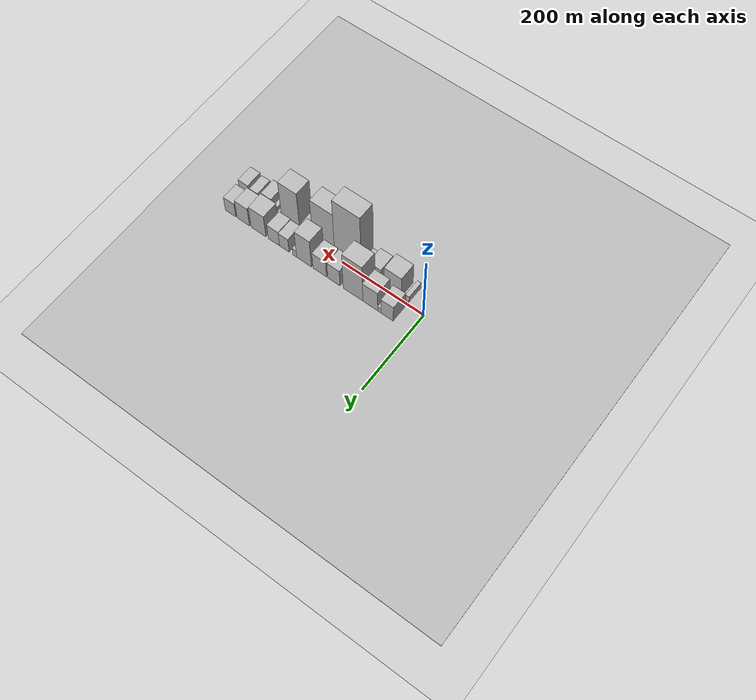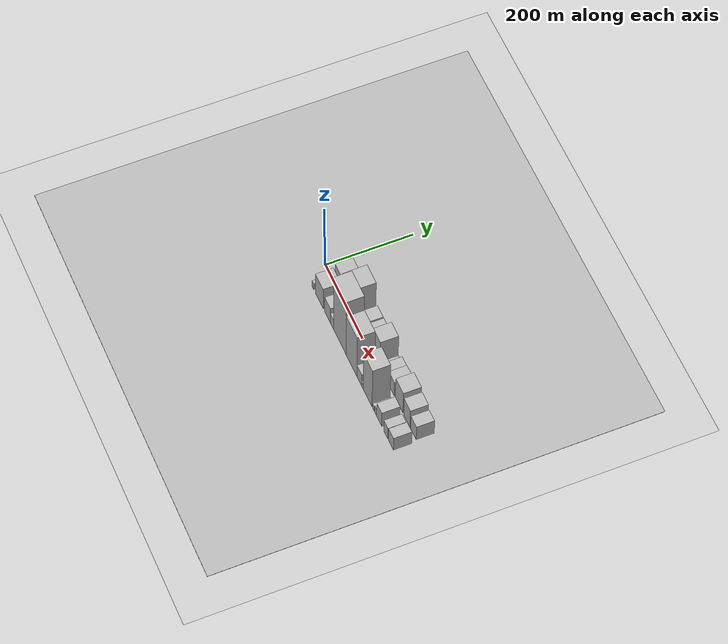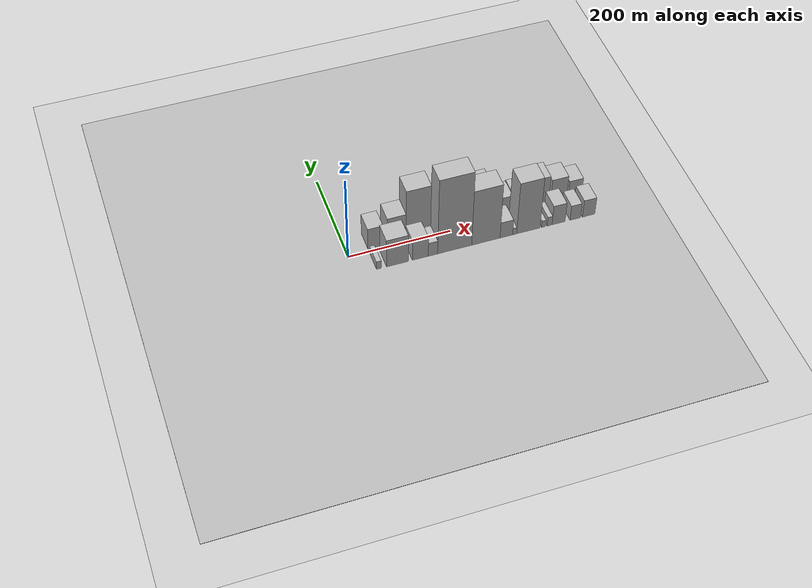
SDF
<?xml version="1.0" encoding="utf-8"?>

<sdf version="1.6">

   <world name="default">

      <gui fullscreen="0">

         <camera name="user_camera">

            <pose>-15 0 4.57585 0 0 0</pose>

            <view_controller>orbit</view_controller>

         </camera>

      </gui>

      <scene>

         <sky>

           <clouds>

             <speed>12</speed>

           </clouds>

         </sky>

         <ambient>0.4 0.4 0.4 1</ambient>

         <background>0.7 0.7 0.7 1</background>

         <shadows>1</shadows>

      </scene>

      <gravity>0 0 -9.8066</gravity>

      <magnetic_field>6e-06 2.3e-05 -4.2e-05</magnetic_field>

      <physics default="0" name="default_physics" type="ode">

         <ode>

            <solver>

               <type>quick</type>

               <iters>10</iters>

               <sor>1.0</sor>

               <use_dynamic_moi_rescaling>0</use_dynamic_moi_rescaling>

            </solver>

            <constraints>

               <cfm>0</cfm>

               <erp>0.2</erp>

               <contact_max_correcting_vel>100</contact_max_correcting_vel>

               <contact_surface_layer>0.001</contact_surface_layer>

            </constraints>

         </ode>

         <max_step_size>0.004</max_step_size>

         <real_time_factor>1</real_time_factor>

         <real_time_update_rate>250</real_time_update_rate>

      </physics>

      <light name="sun" type="directional">

         <cast_shadows>1</cast_shadows>

         <pose>0 0 10 0 0 0</pose>

         <diffuse>0.8 0.8 0.8 1</diffuse>

         <specular>0.2 0.2 0.2 1</specular>

         <attenuation>

            <range>1000</range>

            <constant>0.9</constant>

            <linear>0.01</linear>

            <quadratic>0.001</quadratic>

         </attenuation>

         <direction>-0.5 0.1 -0.9</direction>

      </light>

      <include>

         <name>ground_plane_1</name>

         <uri>model://HANNAS_ground_plane</uri>

         <pose>0 0 0  0 0 0</pose>

      </include>

      <include>

         <name>ground_plane_2</name>

         <uri>model://HANNAS_ground_plane</uri>

         <pose>100 0 0  0 0 0</pose>

      </include>

      <model name="building_1">

         <static>1</static>

         <pose frame="">55.0078 26.0000 0 0.000000 0.000000 1.570796</pose>

         <link name="link">

            <pose frame="">0 0 27.00 0 0 0</pose>

            <collision name="collision">

               <geometry>

                  <box>

                     <size>40.0000 30.0156 54.0000</size>

                  </box>

               </geometry>

               <max_contacts>10</max_contacts>

               <surface>

                  <contact>

                     <ode/>

                  </contact>

                  <bounce/>

                  <friction>

                     <torsional>

                        <ode/>

                     </torsional>

                     <ode/>

                  </friction>

               </surface>

            </collision>

            <visual name="visual">

               <cast_shadows>0</cast_shadows>

               <geometry>

                  <box>

                     <size>40.0000 30.0156 54.0000</size>

                  </box>

               </geometry>

               <material>

                  <script>

                     <uri>model://HANNAS_wall/materials/scripts</uri>

                     <uri>model://HANNAS_wall/materials/textures</uri>

                     <name>vrc/HANNAS_wall</name>

                  </script>

               </material>

            </visual>

            <self_collide>0</self_collide>

            <enable_wind>0</enable_wind>

            <kinematic>0</kinematic>

         </link>

      </model>

      <model name="building_2">

         <static>1</static>

         <pose frame="">73.9823 26.0000 0 0.000000 0.000000 1.570796</pose>

         <link name="link">

            <pose frame="">0 0 9.00 0 0 0</pose>

            <collision name="collision">

               <geometry>

                  <box>

                     <size>40.0000 7.9334 18.0000</size>

                  </box>

               </geometry>

               <max_contacts>10</max_contacts>

               <surface>

                  <contact>

                     <ode/>

                  </contact>

                  <bounce/>

                  <friction>

                     <torsional>

                        <ode/>

                     </torsional>

                     <ode/>

                  </friction>

               </surface>

            </collision>

            <visual name="visual">

               <cast_shadows>0</cast_shadows>

               <geometry>

                  <box>

                     <size>40.0000 7.9334 18.0000</size>

                  </box>

               </geometry>

               <material>

                  <script>

                     <uri>model://HANNAS_wall/materials/scripts</uri>

                     <uri>model://HANNAS_wall/materials/textures</uri>

                     <name>vrc/HANNAS_wall</name>

                  </script>

               </material>

            </visual>

            <self_collide>0</self_collide>

            <enable_wind>0</enable_wind>

            <kinematic>0</kinematic>

         </link>

      </model>

      <model name="building_3">

         <static>1</static>

         <pose frame="">96.3037 26.0000 0 0.000000 0.000000 1.570796</pose>

         <link name="link">

            <pose frame="">0 0 34.50 0 0 0</pose>

            <collision name="collision">

               <geometry>

                  <box>

                     <size>40.0000 36.7094 69.0000</size>

                  </box>

               </geometry>

               <max_contacts>10</max_contacts>

               <surface>

                  <contact>

                     <ode/>

                  </contact>

                  <bounce/>

                  <friction>

                     <torsional>

                        <ode/>

                     </torsional>

                     <ode/>

                  </friction>

               </surface>

            </collision>

            <visual name="visual">

               <cast_shadows>0</cast_shadows>

               <geometry>

                  <box>

                     <size>40.0000 36.7094 69.0000</size>

                  </box>

               </geometry>

               <material>

                  <script>

                     <uri>model://HANNAS_wall/materials/scripts</uri>

                     <uri>model://HANNAS_wall/materials/textures</uri>

                     <name>vrc/HANNAS_wall</name>

                  </script>

               </material>

            </visual>

            <self_collide>0</self_collide>

            <enable_wind>0</enable_wind>

            <kinematic>0</kinematic>

         </link>

      </model>

      <model name="building_4">

         <static>1</static>

         <pose frame="">138.9082 26.0000 0 0.000000 0.000000 1.570796</pose>

         <link name="link">

            <pose frame="">0 0 64.50 0 0 0</pose>

            <collision name="collision">

               <geometry>

                  <box>

                     <size>40.0000 48.4997 129.0000</size>

                  </box>

               </geometry>

               <max_contacts>10</max_contacts>

               <surface>

                  <contact>

                     <ode/>

                  </contact>

                  <bounce/>

                  <friction>

                     <torsional>

                        <ode/>

                     </torsional>

                     <ode/>

                  </friction>

               </surface>

            </collision>

            <visual name="visual">

               <cast_shadows>0</cast_shadows>

               <geometry>

                  <box>

                     <size>40.0000 48.4997 129.0000</size>

                  </box>

               </geometry>

               <material>

                  <script>

                     <uri>model://HANNAS_wall/materials/scripts</uri>

                     <uri>model://HANNAS_wall/materials/textures</uri>

                     <name>vrc/HANNAS_wall</name>

                  </script>

               </material>

            </visual>

            <self_collide>0</self_collide>

            <enable_wind>0</enable_wind>

            <kinematic>0</kinematic>

         </link>

      </model>

      <model name="building_5">

         <static>1</static>

         <pose frame="">186.5689 26.0000 0 0.000000 0.000000 1.570796</pose>

         <link name="link">

            <pose frame="">0 0 28.50 0 0 0</pose>

            <collision name="collision">

               <geometry>

                  <box>

                     <size>40.0000 30.8215 57.0000</size>

                  </box>

               </geometry>

               <max_contacts>10</max_contacts>

               <surface>

                  <contact>

                     <ode/>

                  </contact>

                  <bounce/>

                  <friction>

                     <torsional>

                        <ode/>

                     </torsional>

                     <ode/>

                  </friction>

               </surface>

            </collision>

            <visual name="visual">

               <cast_shadows>0</cast_shadows>

               <geometry>

                  <box>

                     <size>40.0000 30.8215 57.0000</size>

                  </box>

               </geometry>

               <material>

                  <script>

                     <uri>model://HANNAS_wall/materials/scripts</uri>

                     <uri>model://HANNAS_wall/materials/textures</uri>

                     <name>vrc/HANNAS_wall</name>

                  </script>

               </material>

            </visual>

            <self_collide>0</self_collide>

            <enable_wind>0</enable_wind>

            <kinematic>0</kinematic>

         </link>

      </model>

      <model name="building_6">

         <static>1</static>

         <pose frame="">222.0147 26.0000 0 0.000000 0.000000 1.570796</pose>

         <link name="link">

            <pose frame="">0 0 28.50 0 0 0</pose>

            <collision name="collision">

               <geometry>

                  <box>

                     <size>40.0000 34.0702 57.0000</size>

                  </box>

               </geometry>

               <max_contacts>10</max_contacts>

               <surface>

                  <contact>

                     <ode/>

                  </contact>

                  <bounce/>

                  <friction>

                     <torsional>

                        <ode/>

                     </torsional>

                     <ode/>

                  </friction>

               </surface>

            </collision>

            <visual name="visual">

               <cast_shadows>0</cast_shadows>

               <geometry>

                  <box>

                     <size>40.0000 34.0702 57.0000</size>

                  </box>

               </geometry>

               <material>

                  <script>

                     <uri>model://HANNAS_wall/materials/scripts</uri>

                     <uri>model://HANNAS_wall/materials/textures</uri>

                     <name>vrc/HANNAS_wall</name>

                  </script>

               </material>

            </visual>

            <self_collide>0</self_collide>

            <enable_wind>0</enable_wind>

            <kinematic>0</kinematic>

         </link>

      </model>

      <model name="building_7">

         <static>1</static>

         <pose frame="">261.8876 26.0000 0 0.000000 0.000000 1.570796</pose>

         <link name="link">

            <pose frame="">0 0 48.00 0 0 0</pose>

            <collision name="collision">

               <geometry>

                  <box>

                     <size>40.0000 37.6754 96.0000</size>

                  </box>

               </geometry>

               <max_contacts>10</max_contacts>

               <surface>

                  <contact>

                     <ode/>

                  </contact>

                  <bounce/>

                  <friction>

                     <torsional>

                        <ode/>

                     </torsional>

                     <ode/>

                  </friction>

               </surface>

            </collision>

            <visual name="visual">

               <cast_shadows>0</cast_shadows>

               <geometry>

                  <box>

                     <size>40.0000 37.6754 96.0000</size>

                  </box>

               </geometry>

               <material>

                  <script>

                     <uri>model://HANNAS_wall/materials/scripts</uri>

                     <uri>model://HANNAS_wall/materials/textures</uri>

                     <name>vrc/HANNAS_wall</name>

                  </script>

               </material>

            </visual>

            <self_collide>0</self_collide>

            <enable_wind>0</enable_wind>

            <kinematic>0</kinematic>

         </link>

      </model>

      <model name="building_8">

         <static>1</static>

         <pose frame="">285.9605 26.0000 0 0.000000 0.000000 1.570796</pose>

         <link name="link">

            <pose frame="">0 0 12.00 0 0 0</pose>

            <collision name="collision">

               <geometry>

                  <box>

                     <size>40.0000 10.4705 24.0000</size>

                  </box>

               </geometry>

               <max_contacts>10</max_contacts>

               <surface>

                  <contact>

                     <ode/>

                  </contact>

                  <bounce/>

                  <friction>

                     <torsional>

                        <ode/>

                     </torsional>

                     <ode/>

                  </friction>

               </surface>

            </collision>

            <visual name="visual">

               <cast_shadows>0</cast_shadows>

               <geometry>

                  <box>

                     <size>40.0000 10.4705 24.0000</size>

                  </box>

               </geometry>

               <material>

                  <script>

                     <uri>model://HANNAS_wall/materials/scripts</uri>

                     <uri>model://HANNAS_wall/materials/textures</uri>

                     <name>vrc/HANNAS_wall</name>

                  </script>

               </material>

            </visual>

            <self_collide>0</self_collide>

            <enable_wind>0</enable_wind>

            <kinematic>0</kinematic>

         </link>

      </model>

      <model name="building_9">

         <static>1</static>

         <pose frame="">312.4873 26.0000 0 0.000000 0.000000 1.570796</pose>

         <link name="link">

            <pose frame="">0 0 24.00 0 0 0</pose>

            <collision name="collision">

               <geometry>

                  <box>

                     <size>40.0000 24.5831 48.0000</size>

                  </box>

               </geometry>

               <max_contacts>10</max_contacts>

               <surface>

                  <contact>

                     <ode/>

                  </contact>

                  <bounce/>

                  <friction>

                     <torsional>

                        <ode/>

                     </torsional>

                     <ode/>

                  </friction>

               </surface>

            </collision>

            <visual name="visual">

               <cast_shadows>0</cast_shadows>

               <geometry>

                  <box>

                     <size>40.0000 24.5831 48.0000</size>

                  </box>

               </geometry>

               <material>

                  <script>

                     <uri>model://HANNAS_wall/materials/scripts</uri>

                     <uri>model://HANNAS_wall/materials/textures</uri>

                     <name>vrc/HANNAS_wall</name>

                  </script>

               </material>

            </visual>

            <self_collide>0</self_collide>

            <enable_wind>0</enable_wind>

            <kinematic>0</kinematic>

         </link>

      </model>

      <model name="building_10">

         <static>1</static>

         <pose frame="">339.4087 26.0000 0 0.000000 0.000000 1.570796</pose>

         <link name="link">

            <pose frame="">0 0 25.50 0 0 0</pose>

            <collision name="collision">

               <geometry>

                  <box>

                     <size>40.0000 29.2597 51.0000</size>

                  </box>

               </geometry>

               <max_contacts>10</max_contacts>

               <surface>

                  <contact>

                     <ode/>

                  </contact>

                  <bounce/>

                  <friction>

                     <torsional>

                        <ode/>

                     </torsional>

                     <ode/>

                  </friction>

               </surface>

            </collision>

            <visual name="visual">

               <cast_shadows>0</cast_shadows>

               <geometry>

                  <box>

                     <size>40.0000 29.2597 51.0000</size>

                  </box>

               </geometry>

               <material>

                  <script>

                     <uri>model://HANNAS_wall/materials/scripts</uri>

                     <uri>model://HANNAS_wall/materials/textures</uri>

                     <name>vrc/HANNAS_wall</name>

                  </script>

               </material>

            </visual>

            <self_collide>0</self_collide>

            <enable_wind>0</enable_wind>

            <kinematic>0</kinematic>

         </link>

      </model>

      <model name="building_11">

         <static>1</static>

         <pose frame="">379.5721 26.0000 0 0.000000 0.000000 1.570796</pose>

         <link name="link">

            <pose frame="">0 0 37.50 0 0 0</pose>

            <collision name="collision">

               <geometry>

                  <box>

                     <size>40.0000 39.0671 75.0000</size>

                  </box>

               </geometry>

               <max_contacts>10</max_contacts>

               <surface>

                  <contact>

                     <ode/>

                  </contact>

                  <bounce/>

                  <friction>

                     <torsional>

                        <ode/>

                     </torsional>

                     <ode/>

                  </friction>

               </surface>

            </collision>

            <visual name="visual">

               <cast_shadows>0</cast_shadows>

               <geometry>

                  <box>

                     <size>40.0000 39.0671 75.0000</size>

                  </box>

               </geometry>

               <material>

                  <script>

                     <uri>model://HANNAS_wall/materials/scripts</uri>

                     <uri>model://HANNAS_wall/materials/textures</uri>

                     <name>vrc/HANNAS_wall</name>

                  </script>

               </material>

            </visual>

            <self_collide>0</self_collide>

            <enable_wind>0</enable_wind>

            <kinematic>0</kinematic>

         </link>

      </model>

      <model name="building_12">

         <static>1</static>

         <pose frame="">419.6079 26.0000 0 0.000000 0.000000 1.570796</pose>

         <link name="link">

            <pose frame="">0 0 31.50 0 0 0</pose>

            <collision name="collision">

               <geometry>

                  <box>

                     <size>40.0000 33.0046 63.0000</size>

                  </box>

               </geometry>

               <max_contacts>10</max_contacts>

               <surface>

                  <contact>

                     <ode/>

                  </contact>

                  <bounce/>

                  <friction>

                     <torsional>

                        <ode/>

                     </torsional>

                     <ode/>

                  </friction>

               </surface>

            </collision>

            <visual name="visual">

               <cast_shadows>0</cast_shadows>

               <geometry>

                  <box>

                     <size>40.0000 33.0046 63.0000</size>

                  </box>

               </geometry>

               <material>

                  <script>

                     <uri>model://HANNAS_wall/materials/scripts</uri>

                     <uri>model://HANNAS_wall/materials/textures</uri>

                     <name>vrc/HANNAS_wall</name>

                  </script>

               </material>

            </visual>

            <self_collide>0</self_collide>

            <enable_wind>0</enable_wind>

            <kinematic>0</kinematic>

         </link>

      </model>

      <model name="building_13">

         <static>1</static>

         <pose frame="">453.1865 26.0000 0 0.000000 0.000000 1.570796</pose>

         <link name="link">

            <pose frame="">0 0 24.00 0 0 0</pose>

            <collision name="collision">

               <geometry>

                  <box>

                     <size>40.0000 28.1525 48.0000</size>

                  </box>

               </geometry>

               <max_contacts>10</max_contacts>

               <surface>

                  <contact>

                     <ode/>

                  </contact>

                  <bounce/>

                  <friction>

                     <torsional>

                        <ode/>

                     </torsional>

                     <ode/>

                  </friction>

               </surface>

            </collision>

            <visual name="visual">

               <cast_shadows>0</cast_shadows>

               <geometry>

                  <box>

                     <size>40.0000 28.1525 48.0000</size>

                  </box>

               </geometry>

               <material>

                  <script>

                     <uri>model://HANNAS_wall/materials/scripts</uri>

                     <uri>model://HANNAS_wall/materials/textures</uri>

                     <name>vrc/HANNAS_wall</name>

                  </script>

               </material>

            </visual>

            <self_collide>0</self_collide>

            <enable_wind>0</enable_wind>

            <kinematic>0</kinematic>

         </link>

      </model>

      <model name="building_14">

         <static>1</static>

         <pose frame="">44.6611 -26.0000 0 0.000000 0.000000 1.570796</pose>

         <link name="link">

            <pose frame="">0 0 10.50 0 0 0</pose>

            <collision name="collision">

               <geometry>

                  <box>

                     <size>40.0000 9.3223 21.0000</size>

                  </box>

               </geometry>

               <max_contacts>10</max_contacts>

               <surface>

                  <contact>

                     <ode/>

                  </contact>

                  <bounce/>

                  <friction>

                     <torsional>

                        <ode/>

                     </torsional>

                     <ode/>

                  </friction>

               </surface>

            </collision>

            <visual name="visual">

               <cast_shadows>0</cast_shadows>

               <geometry>

                  <box>

                     <size>40.0000 9.3223 21.0000</size>

                  </box>

               </geometry>

               <material>

                  <script>

                     <uri>model://HANNAS_wall/materials/scripts</uri>

                     <uri>model://HANNAS_wall/materials/textures</uri>

                     <name>vrc/HANNAS_wall</name>

                  </script>

               </material>

            </visual>

            <self_collide>0</self_collide>

            <enable_wind>0</enable_wind>

            <kinematic>0</kinematic>

         </link>

      </model>

      <model name="building_15">

         <static>1</static>

         <pose frame="">80.2363 -26.0000 0 0.000000 0.000000 1.570796</pose>

         <link name="link">

            <pose frame="">0 0 36.00 0 0 0</pose>

            <collision name="collision">

               <geometry>

                  <box>

                     <size>40.0000 41.8281 72.0000</size>

                  </box>

               </geometry>

               <max_contacts>10</max_contacts>

               <surface>

                  <contact>

                     <ode/>

                  </contact>

                  <bounce/>

                  <friction>

                     <torsional>

                        <ode/>

                     </torsional>

                     <ode/>

                  </friction>

               </surface>

            </collision>

            <visual name="visual">

               <cast_shadows>0</cast_shadows>

               <geometry>

                  <box>

                     <size>40.0000 41.8281 72.0000</size>

                  </box>

               </geometry>

               <material>

                  <script>

                     <uri>model://HANNAS_wall/materials/scripts</uri>

                     <uri>model://HANNAS_wall/materials/textures</uri>

                     <name>vrc/HANNAS_wall</name>

                  </script>

               </material>

            </visual>

            <self_collide>0</self_collide>

            <enable_wind>0</enable_wind>

            <kinematic>0</kinematic>

         </link>

      </model>

      <model name="building_16">

         <static>1</static>

         <pose frame="">124.4950 -26.0000 0 0.000000 0.000000 1.570796</pose>

         <link name="link">

            <pose frame="">0 0 27.00 0 0 0</pose>

            <collision name="collision">

               <geometry>

                  <box>

                     <size>40.0000 30.6893 54.0000</size>

                  </box>

               </geometry>

               <max_contacts>10</max_contacts>

               <surface>

                  <contact>

                     <ode/>

                  </contact>

                  <bounce/>

                  <friction>

                     <torsional>

                        <ode/>

                     </torsional>

                     <ode/>

                  </friction>

               </surface>

            </collision>

            <visual name="visual">

               <cast_shadows>0</cast_shadows>

               <geometry>

                  <box>

                     <size>40.0000 30.6893 54.0000</size>

                  </box>

               </geometry>

               <material>

                  <script>

                     <uri>model://HANNAS_wall/materials/scripts</uri>

                     <uri>model://HANNAS_wall/materials/textures</uri>

                     <name>vrc/HANNAS_wall</name>

                  </script>

               </material>

            </visual>

            <self_collide>0</self_collide>

            <enable_wind>0</enable_wind>

            <kinematic>0</kinematic>

         </link>

      </model>

      <model name="building_17">

         <static>1</static>

         <pose frame="">148.9701 -26.0000 0 0.000000 0.000000 1.570796</pose>

         <link name="link">

            <pose frame="">0 0 18.00 0 0 0</pose>

            <collision name="collision">

               <geometry>

                  <box>

                     <size>40.0000 18.2610 36.0000</size>

                  </box>

               </geometry>

               <max_contacts>10</max_contacts>

               <surface>

                  <contact>

                     <ode/>

                  </contact>

                  <bounce/>

                  <friction>

                     <torsional>

                        <ode/>

                     </torsional>

                     <ode/>

                  </friction>

               </surface>

            </collision>

            <visual name="visual">

               <cast_shadows>0</cast_shadows>

               <geometry>

                  <box>

                     <size>40.0000 18.2610 36.0000</size>

                  </box>

               </geometry>

               <material>

                  <script>

                     <uri>model://HANNAS_wall/materials/scripts</uri>

                     <uri>model://HANNAS_wall/materials/textures</uri>

                     <name>vrc/HANNAS_wall</name>

                  </script>

               </material>

            </visual>

            <self_collide>0</self_collide>

            <enable_wind>0</enable_wind>

            <kinematic>0</kinematic>

         </link>

      </model>

      <model name="building_18">

         <static>1</static>

         <pose frame="">191.5352 -26.0000 0 0.000000 0.000000 1.570796</pose>

         <link name="link">

            <pose frame="">0 0 97.50 0 0 0</pose>

            <collision name="collision">

               <geometry>

                  <box>

                     <size>40.0000 66.8692 195.0000</size>

                  </box>

               </geometry>

               <max_contacts>10</max_contacts>

               <surface>

                  <contact>

                     <ode/>

                  </contact>

                  <bounce/>

                  <friction>

                     <torsional>

                        <ode/>

                     </torsional>

                     <ode/>

                  </friction>

               </surface>

            </collision>

            <visual name="visual">

               <cast_shadows>0</cast_shadows>

               <geometry>

                  <box>

                     <size>40.0000 66.8692 195.0000</size>

                  </box>

               </geometry>

               <material>

                  <script>

                     <uri>model://HANNAS_wall/materials/scripts</uri>

                     <uri>model://HANNAS_wall/materials/textures</uri>

                     <name>vrc/HANNAS_wall</name>

                  </script>

               </material>

            </visual>

            <self_collide>0</self_collide>

            <enable_wind>0</enable_wind>

            <kinematic>0</kinematic>

         </link>

      </model>

      <model name="building_19">

         <static>1</static>

         <pose frame="">253.0371 -26.0000 0 0.000000 0.000000 1.570796</pose>

         <link name="link">

            <pose frame="">0 0 72.00 0 0 0</pose>

            <collision name="collision">

               <geometry>

                  <box>

                     <size>40.0000 56.1347 144.0000</size>

                  </box>

               </geometry>

               <max_contacts>10</max_contacts>

               <surface>

                  <contact>

                     <ode/>

                  </contact>

                  <bounce/>

                  <friction>

                     <torsional>

                        <ode/>

                     </torsional>

                     <ode/>

                  </friction>

               </surface>

            </collision>

            <visual name="visual">

               <cast_shadows>0</cast_shadows>

               <geometry>

                  <box>

                     <size>40.0000 56.1347 144.0000</size>

                  </box>

               </geometry>

               <material>

                  <script>

                     <uri>model://HANNAS_wall/materials/scripts</uri>

                     <uri>model://HANNAS_wall/materials/textures</uri>

                     <name>vrc/HANNAS_wall</name>

                  </script>

               </material>

            </visual>

            <self_collide>0</self_collide>

            <enable_wind>0</enable_wind>

            <kinematic>0</kinematic>

         </link>

      </model>

      <model name="building_20">

         <static>1</static>

         <pose frame="">293.6844 -26.0000 0 0.000000 0.000000 1.570796</pose>

         <link name="link">

            <pose frame="">0 0 21.00 0 0 0</pose>

            <collision name="collision">

               <geometry>

                  <box>

                     <size>40.0000 25.1599 42.0000</size>

                  </box>

               </geometry>

               <max_contacts>10</max_contacts>

               <surface>

                  <contact>

                     <ode/>

                  </contact>

                  <bounce/>

                  <friction>

                     <torsional>

                        <ode/>

                     </torsional>

                     <ode/>

                  </friction>

               </surface>

            </collision>

            <visual name="visual">

               <cast_shadows>0</cast_shadows>

               <geometry>

                  <box>

                     <size>40.0000 25.1599 42.0000</size>

                  </box>

               </geometry>

               <material>

                  <script>

                     <uri>model://HANNAS_wall/materials/scripts</uri>

                     <uri>model://HANNAS_wall/materials/textures</uri>

                     <name>vrc/HANNAS_wall</name>

                  </script>

               </material>

            </visual>

            <self_collide>0</self_collide>

            <enable_wind>0</enable_wind>

            <kinematic>0</kinematic>

         </link>

      </model>

      <model name="building_21">

         <static>1</static>

         <pose frame="">310.1856 -26.0000 0 0.000000 0.000000 1.570796</pose>

         <link name="link">

            <pose frame="">0 0 9.00 0 0 0</pose>

            <collision name="collision">

               <geometry>

                  <box>

                     <size>40.0000 7.8425 18.0000</size>

                  </box>

               </geometry>

               <max_contacts>10</max_contacts>

               <surface>

                  <contact>

                     <ode/>

                  </contact>

                  <bounce/>

                  <friction>

                     <torsional>

                        <ode/>

                     </torsional>

                     <ode/>

                  </friction>

               </surface>

            </collision>

            <visual name="visual">

               <cast_shadows>0</cast_shadows>

               <geometry>

                  <box>

                     <size>40.0000 7.8425 18.0000</size>

                  </box>

               </geometry>

               <material>

                  <script>

                     <uri>model://HANNAS_wall/materials/scripts</uri>

                     <uri>model://HANNAS_wall/materials/textures</uri>

                     <name>vrc/HANNAS_wall</name>

                  </script>

               </material>

            </visual>

            <self_collide>0</self_collide>

            <enable_wind>0</enable_wind>

            <kinematic>0</kinematic>

         </link>

      </model>

      <model name="building_22">

         <static>1</static>

         <pose frame="">337.5874 -26.0000 0 0.000000 0.000000 1.570796</pose>

         <link name="link">

            <pose frame="">0 0 67.50 0 0 0</pose>

            <collision name="collision">

               <geometry>

                  <box>

                     <size>40.0000 46.9611 135.0000</size>

                  </box>

               </geometry>

               <max_contacts>10</max_contacts>

               <surface>

                  <contact>

                     <ode/>

                  </contact>

                  <bounce/>

                  <friction>

                     <torsional>

                        <ode/>

                     </torsional>

                     <ode/>

                  </friction>

               </surface>

            </collision>

            <visual name="visual">

               <cast_shadows>0</cast_shadows>

               <geometry>

                  <box>

                     <size>40.0000 46.9611 135.0000</size>

                  </box>

               </geometry>

               <material>

                  <script>

                     <uri>model://HANNAS_wall/materials/scripts</uri>

                     <uri>model://HANNAS_wall/materials/textures</uri>

                     <name>vrc/HANNAS_wall</name>

                  </script>

               </material>

            </visual>

            <self_collide>0</self_collide>

            <enable_wind>0</enable_wind>

            <kinematic>0</kinematic>

         </link>

      </model>

      <model name="building_23">

         <static>1</static>

         <pose frame="">368.3259 -26.0000 0 0.000000 0.000000 1.570796</pose>

         <link name="link">

            <pose frame="">0 0 9.00 0 0 0</pose>

            <collision name="collision">

               <geometry>

                  <box>

                     <size>40.0000 8.5161 18.0000</size>

                  </box>

               </geometry>

               <max_contacts>10</max_contacts>

               <surface>

                  <contact>

                     <ode/>

                  </contact>

                  <bounce/>

                  <friction>

                     <torsional>

                        <ode/>

                     </torsional>

                     <ode/>

                  </friction>

               </surface>

            </collision>

            <visual name="visual">

               <cast_shadows>0</cast_shadows>

               <geometry>

                  <box>

                     <size>40.0000 8.5161 18.0000</size>

                  </box>

               </geometry>

               <material>

                  <script>

                     <uri>model://HANNAS_wall/materials/scripts</uri>

                     <uri>model://HANNAS_wall/materials/textures</uri>

                     <name>vrc/HANNAS_wall</name>

                  </script>

               </material>

            </visual>

            <self_collide>0</self_collide>

            <enable_wind>0</enable_wind>

            <kinematic>0</kinematic>

         </link>

      </model>

      <model name="building_24">

         <static>1</static>

         <pose frame="">380.4385 -26.0000 0 0.000000 0.000000 1.570796</pose>

         <link name="link">

            <pose frame="">0 0 12.00 0 0 0</pose>

            <collision name="collision">

               <geometry>

                  <box>

                     <size>40.0000 9.7090 24.0000</size>

                  </box>

               </geometry>

               <max_contacts>10</max_contacts>

               <surface>

                  <contact>

                     <ode/>

                  </contact>

                  <bounce/>

                  <friction>

                     <torsional>

                        <ode/>

                     </torsional>

                     <ode/>

                  </friction>

               </surface>

            </collision>

            <visual name="visual">

               <cast_shadows>0</cast_shadows>

               <geometry>

                  <box>

                     <size>40.0000 9.7090 24.0000</size>

                  </box>

               </geometry>

               <material>

                  <script>

                     <uri>model://HANNAS_wall/materials/scripts</uri>

                     <uri>model://HANNAS_wall/materials/textures</uri>

                     <name>vrc/HANNAS_wall</name>

                  </script>

               </material>

            </visual>

            <self_collide>0</self_collide>

            <enable_wind>0</enable_wind>

            <kinematic>0</kinematic>

         </link>

      </model>

      <model name="building_25">

         <static>1</static>

         <pose frame="">398.4980 -26.0000 0 0.000000 0.000000 1.570796</pose>

         <link name="link">

            <pose frame="">0 0 25.50 0 0 0</pose>

            <collision name="collision">

               <geometry>

                  <box>

                     <size>40.0000 26.4100 51.0000</size>

                  </box>

               </geometry>

               <max_contacts>10</max_contacts>

               <surface>

                  <contact>

                     <ode/>

                  </contact>

                  <bounce/>

                  <friction>

                     <torsional>

                        <ode/>

                     </torsional>

                     <ode/>

                  </friction>

               </surface>

            </collision>

            <visual name="visual">

               <cast_shadows>0</cast_shadows>

               <geometry>

                  <box>

                     <size>40.0000 26.4100 51.0000</size>

                  </box>

               </geometry>

               <material>

                  <script>

                     <uri>model://HANNAS_wall/materials/scripts</uri>

                     <uri>model://HANNAS_wall/materials/textures</uri>

                     <name>vrc/HANNAS_wall</name>

                  </script>

               </material>

            </visual>

            <self_collide>0</self_collide>

            <enable_wind>0</enable_wind>

            <kinematic>0</kinematic>

         </link>

      </model>

      <model name="building_26">

         <static>1</static>

         <pose frame="">432.3428 -26.0000 0 0.000000 0.000000 1.570796</pose>

         <link name="link">

            <pose frame="">0 0 19.50 0 0 0</pose>

            <collision name="collision">

               <geometry>

                  <box>

                     <size>40.0000 21.2796 39.0000</size>

                  </box>

               </geometry>

               <max_contacts>10</max_contacts>

               <surface>

                  <contact>

                     <ode/>

                  </contact>

                  <bounce/>

                  <friction>

                     <torsional>

                        <ode/>

                     </torsional>

                     <ode/>

                  </friction>

               </surface>

            </collision>

            <visual name="visual">

               <cast_shadows>0</cast_shadows>

               <geometry>

                  <box>

                     <size>40.0000 21.2796 39.0000</size>

                  </box>

               </geometry>

               <material>

                  <script>

                     <uri>model://HANNAS_wall/materials/scripts</uri>

                     <uri>model://HANNAS_wall/materials/textures</uri>

                     <name>vrc/HANNAS_wall</name>

                  </script>

               </material>

            </visual>

            <self_collide>0</self_collide>

            <enable_wind>0</enable_wind>

            <kinematic>0</kinematic>

         </link>

      </model>

      <model name="building_27">

         <static>1</static>

         <pose frame="">459.6263 -26.0000 0 0.000000 0.000000 1.570796</pose>

         <link name="link">

            <pose frame="">0 0 22.50 0 0 0</pose>

            <collision name="collision">

               <geometry>

                  <box>

                     <size>40.0000 25.2873 45.0000</size>

                  </box>

               </geometry>

               <max_contacts>10</max_contacts>

               <surface>

                  <contact>

                     <ode/>

                  </contact>

                  <bounce/>

                  <friction>

                     <torsional>

                        <ode/>

                     </torsional>

                     <ode/>

                  </friction>

               </surface>

            </collision>

            <visual name="visual">

               <cast_shadows>0</cast_shadows>

               <geometry>

                  <box>

                     <size>40.0000 25.2873 45.0000</size>

                  </box>

               </geometry>

               <material>

                  <script>

                     <uri>model://HANNAS_wall/materials/scripts</uri>

                     <uri>model://HANNAS_wall/materials/textures</uri>

                     <name>vrc/HANNAS_wall</name>

                  </script>

               </material>

            </visual>

            <self_collide>0</self_collide>

            <enable_wind>0</enable_wind>

            <kinematic>0</kinematic>

         </link>

      </model>

   </world>

</sdf>

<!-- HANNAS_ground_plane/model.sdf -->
<sdf version="1.4">
<model name="HANNAS_ground_plane">
  <static>true</static>
    <link name="link">
      <collision name="collision">
        <geometry>
          <plane>
            <normal>0 0 1</normal>
            <size>1000 1000</size>
          </plane>
        </geometry>
        <surface>
          <friction>
            <ode>
              <mu>100</mu>
              <mu2>50</mu2>
            </ode>
          </friction>
        </surface>
      </collision>
      <visual name="visual">
        <cast_shadows>false</cast_shadows>
        <geometry>
          <plane>
            <normal>0 0 1</normal>
            <size>1000 1000</size>
          </plane>
        </geometry>
        <material>
          <script>
            <uri>model://HANNAS_ground_plane/materials/scripts/HANNAS_ground_plane.material</uri>
	    <uri>model://HANNAS_ground_plane/materials/textures</uri>
            <name>HANNASGroundPlane/Image</name>
          </script>
        </material>
      </visual>
    </link>
  </model>
</sdf>
